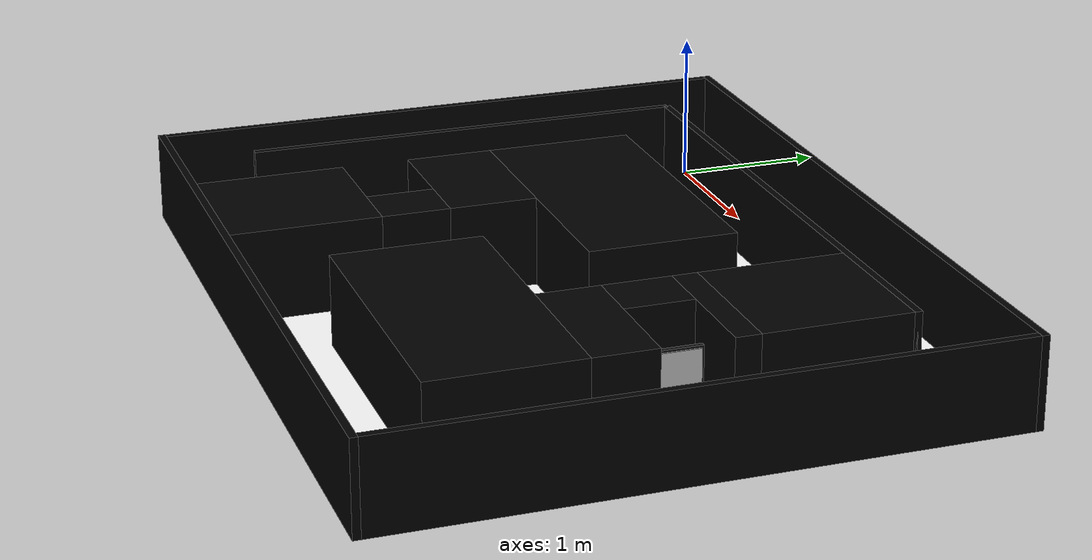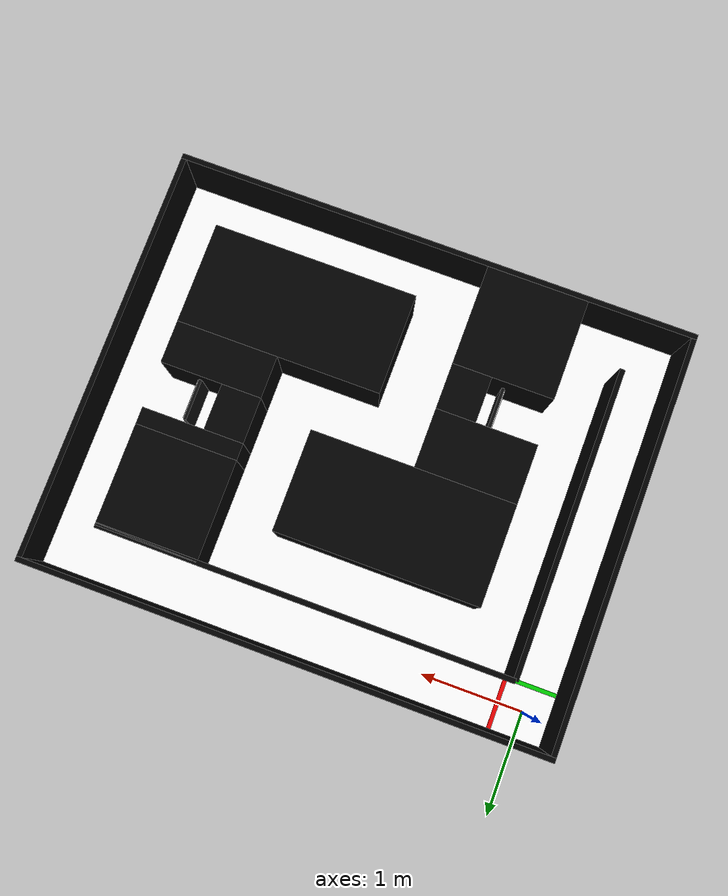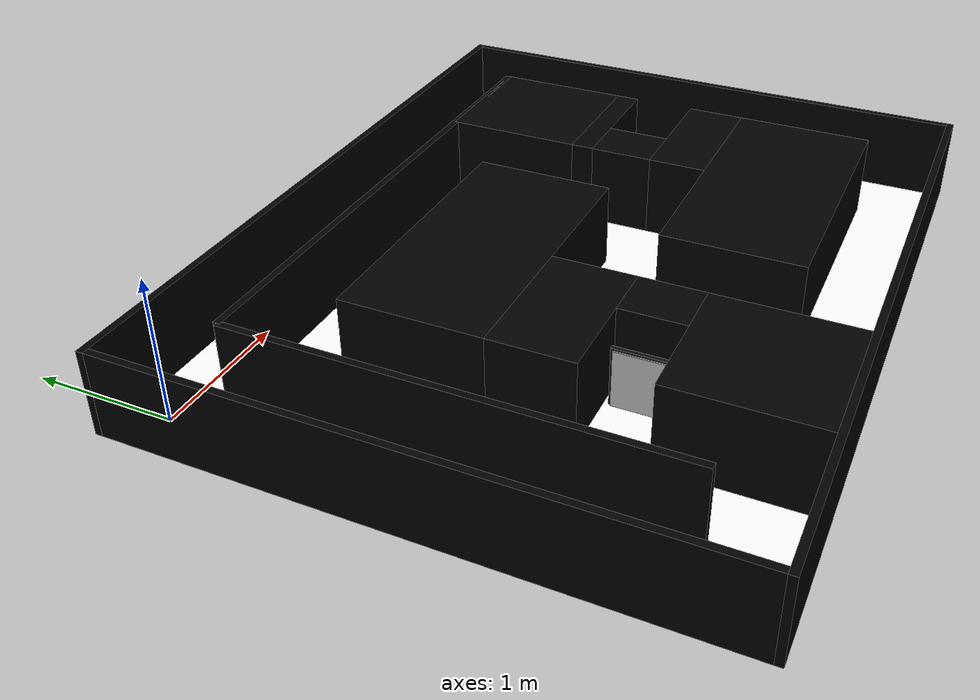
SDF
<?xml version='1.0'?>
<sdf version='1.6'>
  <world name='rm_5x4_start_behind_world'>
    <gravity>0 0 -9.80665</gravity>
    <physics name='ode_physics' default='1' type='ode'>
      <max_step_size>0.001</max_step_size>
      <real_time_factor>1.0</real_time_factor>
      <real_time_update_rate>1000</real_time_update_rate>
    </physics>

    <include>
      <uri>model://sun</uri>
    </include>

    <model name='rm_5x4_start_behind_map'>
      <static>true</static>
      <link name='map_link'>

        <collision name='floor_white_collision'>
          <pose>2.250000 -1.750000 0.010000 0 0 0</pose>
          <geometry>
            <box><size>5.000000 4.000000 0.020000</size></box>
          </geometry>
          <surface>
            <friction>
              <ode><mu>1.0</mu><mu2>1.0</mu2></ode>
            </friction>
          </surface>
        </collision>
        <visual name='floor_white_visual'>
          <pose>2.250000 -1.750000 0.010000 0 0 0</pose>
          <geometry>
            <box><size>5.000000 4.000000 0.020000</size></box>
          </geometry>
          <material>
            <ambient>1.000 1.000 1.000 1.000</ambient>
            <diffuse>1.000 1.000 1.000 1.000</diffuse>
            <specular>0.000 0.000 0.000 1.000</specular>
            <emissive>1.000 1.000 1.000 1.000</emissive>
          </material>
        </visual>

        <collision name='outer_wall_bottom_collision'>
          <pose>2.250000 -3.775000 0.320000 0 0 0</pose>
          <geometry>
            <box><size>5.100000 0.050000 0.600000</size></box>
          </geometry>
          <surface>
            <friction>
              <ode><mu>1.0</mu><mu2>1.0</mu2></ode>
            </friction>
          </surface>
        </collision>
        <visual name='outer_wall_bottom_visual'>
          <pose>2.250000 -3.775000 0.320000 0 0 0</pose>
          <geometry>
            <box><size>5.100000 0.050000 0.600000</size></box>
          </geometry>
          <material>
            <ambient>0.000 0.000 0.000 1.000</ambient>
            <diffuse>0.000 0.000 0.000 1.000</diffuse>
            <specular>0.000 0.000 0.000 1.000</specular>
            <emissive>0.000 0.000 0.000 1.000</emissive>
          </material>
        </visual>

        <collision name='outer_wall_top_collision'>
          <pose>2.250000 0.275000 0.320000 0 0 0</pose>
          <geometry>
            <box><size>5.100000 0.050000 0.600000</size></box>
          </geometry>
          <surface>
            <friction>
              <ode><mu>1.0</mu><mu2>1.0</mu2></ode>
            </friction>
          </surface>
        </collision>
        <visual name='outer_wall_top_visual'>
          <pose>2.250000 0.275000 0.320000 0 0 0</pose>
          <geometry>
            <box><size>5.100000 0.050000 0.600000</size></box>
          </geometry>
          <material>
            <ambient>0.000 0.000 0.000 1.000</ambient>
            <diffuse>0.000 0.000 0.000 1.000</diffuse>
            <specular>0.000 0.000 0.000 1.000</specular>
            <emissive>0.000 0.000 0.000 1.000</emissive>
          </material>
        </visual>

        <collision name='outer_wall_left_collision'>
          <pose>-0.275000 -1.750000 0.320000 0 0 0</pose>
          <geometry>
            <box><size>0.050000 4.000000 0.600000</size></box>
          </geometry>
          <surface>
            <friction>
              <ode><mu>1.0</mu><mu2>1.0</mu2></ode>
            </friction>
          </surface>
        </collision>
        <visual name='outer_wall_left_visual'>
          <pose>-0.275000 -1.750000 0.320000 0 0 0</pose>
          <geometry>
            <box><size>0.050000 4.000000 0.600000</size></box>
          </geometry>
          <material>
            <ambient>0.000 0.000 0.000 1.000</ambient>
            <diffuse>0.000 0.000 0.000 1.000</diffuse>
            <specular>0.000 0.000 0.000 1.000</specular>
            <emissive>0.000 0.000 0.000 1.000</emissive>
          </material>
        </visual>

        <collision name='outer_wall_right_collision'>
          <pose>4.775000 -1.750000 0.320000 0 0 0</pose>
          <geometry>
            <box><size>0.050000 4.000000 0.600000</size></box>
          </geometry>
          <surface>
            <friction>
              <ode><mu>1.0</mu><mu2>1.0</mu2></ode>
            </friction>
          </surface>
        </collision>
        <visual name='outer_wall_right_visual'>
          <pose>4.775000 -1.750000 0.320000 0 0 0</pose>
          <geometry>
            <box><size>0.050000 4.000000 0.600000</size></box>
          </geometry>
          <material>
            <ambient>0.000 0.000 0.000 1.000</ambient>
            <diffuse>0.000 0.000 0.000 1.000</diffuse>
            <specular>0.000 0.000 0.000 1.000</specular>
            <emissive>0.000 0.000 0.000 1.000</emissive>
          </material>
        </visual>

        <collision name='inner_wall_left_collision'>
          <pose>0.250000 -1.750000 0.320000 0 0 0</pose>
          <geometry>
            <box><size>0.050000 3.000000 0.600000</size></box>
          </geometry>
          <surface>
            <friction>
              <ode><mu>1.0</mu><mu2>1.0</mu2></ode>
            </friction>
          </surface>
        </collision>
        <visual name='inner_wall_left_visual'>
          <pose>0.250000 -1.750000 0.320000 0 0 0</pose>
          <geometry>
            <box><size>0.050000 3.000000 0.600000</size></box>
          </geometry>
          <material>
            <ambient>0.000 0.000 0.000 1.000</ambient>
            <diffuse>0.000 0.000 0.000 1.000</diffuse>
            <specular>0.000 0.000 0.000 1.000</specular>
            <emissive>0.000 0.000 0.000 1.000</emissive>
          </material>
        </visual>

        <collision name='inner_wall_top_collision'>
          <pose>2.250000 -0.250000 0.320000 0 0 0</pose>
          <geometry>
            <box><size>4.000000 0.050000 0.600000</size></box>
          </geometry>
          <surface>
            <friction>
              <ode><mu>1.0</mu><mu2>1.0</mu2></ode>
            </friction>
          </surface>
        </collision>
        <visual name='inner_wall_top_visual'>
          <pose>2.250000 -0.250000 0.320000 0 0 0</pose>
          <geometry>
            <box><size>4.000000 0.050000 0.600000</size></box>
          </geometry>
          <material>
            <ambient>0.000 0.000 0.000 1.000</ambient>
            <diffuse>0.000 0.000 0.000 1.000</diffuse>
            <specular>0.000 0.000 0.000 1.000</specular>
            <emissive>0.000 0.000 0.000 1.000</emissive>
          </material>
        </visual>

        <collision name='left_obstacle_top_collision'>
          <pose>1.742500 -1.242500 0.320000 0 0 0</pose>
          <geometry>
            <box><size>1.985000 0.985000 0.600000</size></box>
          </geometry>
          <surface>
            <friction>
              <ode><mu>1.0</mu><mu2>1.0</mu2></ode>
            </friction>
          </surface>
        </collision>
        <visual name='left_obstacle_top_visual'>
          <pose>1.742500 -1.242500 0.320000 0 0 0</pose>
          <geometry>
            <box><size>1.985000 0.985000 0.600000</size></box>
          </geometry>
          <material>
            <ambient>0.000 0.000 0.000 1.000</ambient>
            <diffuse>0.000 0.000 0.000 1.000</diffuse>
            <specular>0.000 0.000 0.000 1.000</specular>
            <emissive>0.000 0.000 0.000 1.000</emissive>
          </material>
        </visual>

        <collision name='left_obstacle_mid_upper_collision'>
          <pose>1.242500 -2.025000 0.320000 0 0 0</pose>
          <geometry>
            <box><size>0.985000 0.580000 0.600000</size></box>
          </geometry>
          <surface>
            <friction>
              <ode><mu>1.0</mu><mu2>1.0</mu2></ode>
            </friction>
          </surface>
        </collision>
        <visual name='left_obstacle_mid_upper_visual'>
          <pose>1.242500 -2.025000 0.320000 0 0 0</pose>
          <geometry>
            <box><size>0.985000 0.580000 0.600000</size></box>
          </geometry>
          <material>
            <ambient>0.000 0.000 0.000 1.000</ambient>
            <diffuse>0.000 0.000 0.000 1.000</diffuse>
            <specular>0.000 0.000 0.000 1.000</specular>
            <emissive>0.000 0.000 0.000 1.000</emissive>
          </material>
        </visual>

        <collision name='left_obstacle_mid_back_collision'>
          <pose>1.542500 -2.540000 0.320000 0 0 0</pose>
          <geometry>
            <box><size>0.385000 0.450000 0.600000</size></box>
          </geometry>
          <surface>
            <friction>
              <ode><mu>1.0</mu><mu2>1.0</mu2></ode>
            </friction>
          </surface>
        </collision>
        <visual name='left_obstacle_mid_back_visual'>
          <pose>1.542500 -2.540000 0.320000 0 0 0</pose>
          <geometry>
            <box><size>0.385000 0.450000 0.600000</size></box>
          </geometry>
          <material>
            <ambient>0.000 0.000 0.000 1.000</ambient>
            <diffuse>0.000 0.000 0.000 1.000</diffuse>
            <specular>0.000 0.000 0.000 1.000</specular>
            <emissive>0.000 0.000 0.000 1.000</emissive>
          </material>
        </visual>

        <collision name='left_obstacle_bottom_collision'>
          <pose>1.242500 -3.257500 0.320000 0 0 0</pose>
          <geometry>
            <box><size>0.985000 0.985000 0.600000</size></box>
          </geometry>
          <surface>
            <friction>
              <ode><mu>1.0</mu><mu2>1.0</mu2></ode>
            </friction>
          </surface>
        </collision>
        <visual name='left_obstacle_bottom_visual'>
          <pose>1.242500 -3.257500 0.320000 0 0 0</pose>
          <geometry>
            <box><size>0.985000 0.985000 0.600000</size></box>
          </geometry>
          <material>
            <ambient>0.000 0.000 0.000 1.000</ambient>
            <diffuse>0.000 0.000 0.000 1.000</diffuse>
            <specular>0.000 0.000 0.000 1.000</specular>
            <emissive>0.000 0.000 0.000 1.000</emissive>
          </material>
        </visual>

        <collision name='right_obstacle_top_collision'>
          <pose>3.757500 -0.742500 0.320000 0 0 0</pose>
          <geometry>
            <box><size>0.985000 0.985000 0.600000</size></box>
          </geometry>
          <surface>
            <friction>
              <ode><mu>1.0</mu><mu2>1.0</mu2></ode>
            </friction>
          </surface>
        </collision>
        <visual name='right_obstacle_top_visual'>
          <pose>3.757500 -0.742500 0.320000 0 0 0</pose>
          <geometry>
            <box><size>0.985000 0.985000 0.600000</size></box>
          </geometry>
          <material>
            <ambient>0.000 0.000 0.000 1.000</ambient>
            <diffuse>0.000 0.000 0.000 1.000</diffuse>
            <specular>0.000 0.000 0.000 1.000</specular>
            <emissive>0.000 0.000 0.000 1.000</emissive>
          </material>
        </visual>

        <collision name='right_obstacle_mid_upper_collision'>
          <pose>3.757500 -1.317500 0.320000 0 0 0</pose>
          <geometry>
            <box><size>0.985000 0.165000 0.600000</size></box>
          </geometry>
          <surface>
            <friction>
              <ode><mu>1.0</mu><mu2>1.0</mu2></ode>
            </friction>
          </surface>
        </collision>
        <visual name='right_obstacle_mid_upper_visual'>
          <pose>3.757500 -1.317500 0.320000 0 0 0</pose>
          <geometry>
            <box><size>0.985000 0.165000 0.600000</size></box>
          </geometry>
          <material>
            <ambient>0.000 0.000 0.000 1.000</ambient>
            <diffuse>0.000 0.000 0.000 1.000</diffuse>
            <specular>0.000 0.000 0.000 1.000</specular>
            <emissive>0.000 0.000 0.000 1.000</emissive>
          </material>
        </visual>

        <collision name='right_obstacle_mid_back_collision'>
          <pose>3.457500 -1.625000 0.320000 0 0 0</pose>
          <geometry>
            <box><size>0.385000 0.450000 0.600000</size></box>
          </geometry>
          <surface>
            <friction>
              <ode><mu>1.0</mu><mu2>1.0</mu2></ode>
            </friction>
          </surface>
        </collision>
        <visual name='right_obstacle_mid_back_visual'>
          <pose>3.457500 -1.625000 0.320000 0 0 0</pose>
          <geometry>
            <box><size>0.385000 0.450000 0.600000</size></box>
          </geometry>
          <material>
            <ambient>0.000 0.000 0.000 1.000</ambient>
            <diffuse>0.000 0.000 0.000 1.000</diffuse>
            <specular>0.000 0.000 0.000 1.000</specular>
            <emissive>0.000 0.000 0.000 1.000</emissive>
          </material>
        </visual>

        <collision name='right_obstacle_mid_lower_collision'>
          <pose>3.757500 -2.057500 0.320000 0 0 0</pose>
          <geometry>
            <box><size>0.985000 0.415000 0.600000</size></box>
          </geometry>
          <surface>
            <friction>
              <ode><mu>1.0</mu><mu2>1.0</mu2></ode>
            </friction>
          </surface>
        </collision>
        <visual name='right_obstacle_mid_lower_visual'>
          <pose>3.757500 -2.057500 0.320000 0 0 0</pose>
          <geometry>
            <box><size>0.985000 0.415000 0.600000</size></box>
          </geometry>
          <material>
            <ambient>0.000 0.000 0.000 1.000</ambient>
            <diffuse>0.000 0.000 0.000 1.000</diffuse>
            <specular>0.000 0.000 0.000 1.000</specular>
            <emissive>0.000 0.000 0.000 1.000</emissive>
          </material>
        </visual>

        <collision name='right_obstacle_bottom_collision'>
          <pose>3.257500 -2.757500 0.320000 0 0 0</pose>
          <geometry>
            <box><size>1.985000 0.985000 0.600000</size></box>
          </geometry>
          <surface>
            <friction>
              <ode><mu>1.0</mu><mu2>1.0</mu2></ode>
            </friction>
          </surface>
        </collision>
        <visual name='right_obstacle_bottom_visual'>
          <pose>3.257500 -2.757500 0.320000 0 0 0</pose>
          <geometry>
            <box><size>1.985000 0.985000 0.600000</size></box>
          </geometry>
          <material>
            <ambient>0.000 0.000 0.000 1.000</ambient>
            <diffuse>0.000 0.000 0.000 1.000</diffuse>
            <specular>0.000 0.000 0.000 1.000</specular>
            <emissive>0.000 0.000 0.000 1.000</emissive>
          </material>
        </visual>

        <visual name='green_start_line_visual'>
          <pose>0.000000 -0.250000 0.023000 0 0 0</pose>
          <geometry>
            <box><size>0.500000 0.040000 0.004000</size></box>
          </geometry>
          <material>
            <ambient>0.000 0.800 0.000 1.000</ambient>
            <diffuse>0.000 0.800 0.000 1.000</diffuse>
            <specular>0.000 0.000 0.000 1.000</specular>
            <emissive>0.000 0.800 0.000 1.000</emissive>
          </material>
        </visual>

        <visual name='red_finish_line_visual'>
          <pose>0.250000 0.000000 0.023000 0 0 0</pose>
          <geometry>
            <box><size>0.040000 0.500000 0.004000</size></box>
          </geometry>
          <material>
            <ambient>0.900 0.000 0.000 1.000</ambient>
            <diffuse>0.900 0.000 0.000 1.000</diffuse>
            <specular>0.000 0.000 0.000 1.000</specular>
            <emissive>0.900 0.000 0.000 1.000</emissive>
          </material>
        </visual>

        <visual name='zone1_recognition_backing'>
          <pose>1.210000 -2.550000 0.200000 0 0 0</pose>
          <cast_shadows>false</cast_shadows>
          <geometry>
            <box><size>0.030000 0.410000 0.480000</size></box>
          </geometry>
          <material>
            <ambient>0.050 0.050 0.050 1.000</ambient>
            <diffuse>0.050 0.050 0.050 1.000</diffuse>
            <specular>0.000 0.000 0.000 1.000</specular>
            <emissive>0.050 0.050 0.050 1.000</emissive>
          </material>
          <transparency>0.0</transparency>
        </visual>

        <visual name='zone1_recognition_panel'>
          <pose>1.190000 -2.550000 0.200000 0 0 0</pose>
          <cast_shadows>false</cast_shadows>
          <geometry>
            <box><size>0.010000 0.380000 0.45</size></box>
          </geometry>
          <material>
            <script>
              <uri>file://materials/scripts</uri>
              <uri>file://materials/textures</uri>
              <name>RAICOM/Zone1Panel</name>
            </script>
          </material>
          <transparency>0.0</transparency>
        </visual>

        <visual name='zone2_recognition_backing'>
          <pose>3.890000 -1.650000 0.200000 0 0 1.57079632679</pose>
          <cast_shadows>false</cast_shadows>
          <geometry>
            <box><size>0.410000 0.030000 0.480000</size></box>
          </geometry>
          <material>
            <ambient>0.050 0.050 0.050 1.000</ambient>
            <diffuse>0.050 0.050 0.050 1.000</diffuse>
            <specular>0.000 0.000 0.000 1.000</specular>
            <emissive>0.050 0.050 0.050 1.000</emissive>
          </material>
          <transparency>0.0</transparency>
        </visual>

        <visual name='zone2_recognition_panel'>
          <pose>3.910000 -1.650000 0.200000 0 0 1.57079632679</pose>
          <cast_shadows>false</cast_shadows>
          <geometry>
            <box><size>0.380000 0.010000 0.45</size></box>
          </geometry>
          <material>
            <script>
              <uri>file://materials/scripts</uri>
              <uri>file://materials/textures</uri>
              <name>RAICOM/Zone2Panel</name>
            </script>
          </material>
          <transparency>0.0</transparency>
        </visual>
      </link>
    </model>

    <scene>
      <ambient>0.85 0.85 0.85 1</ambient>
      <background>0.70 0.70 0.70 1</background>
      <shadows>false</shadows>
    </scene>

    <gui fullscreen='0'>
      <camera name='user_camera'>
        <pose>2.25 -1.75 6.5 0 1.570796 0</pose>
        <view_controller>orbit</view_controller>
      </camera>
    </gui>
  </world>
</sdf>
